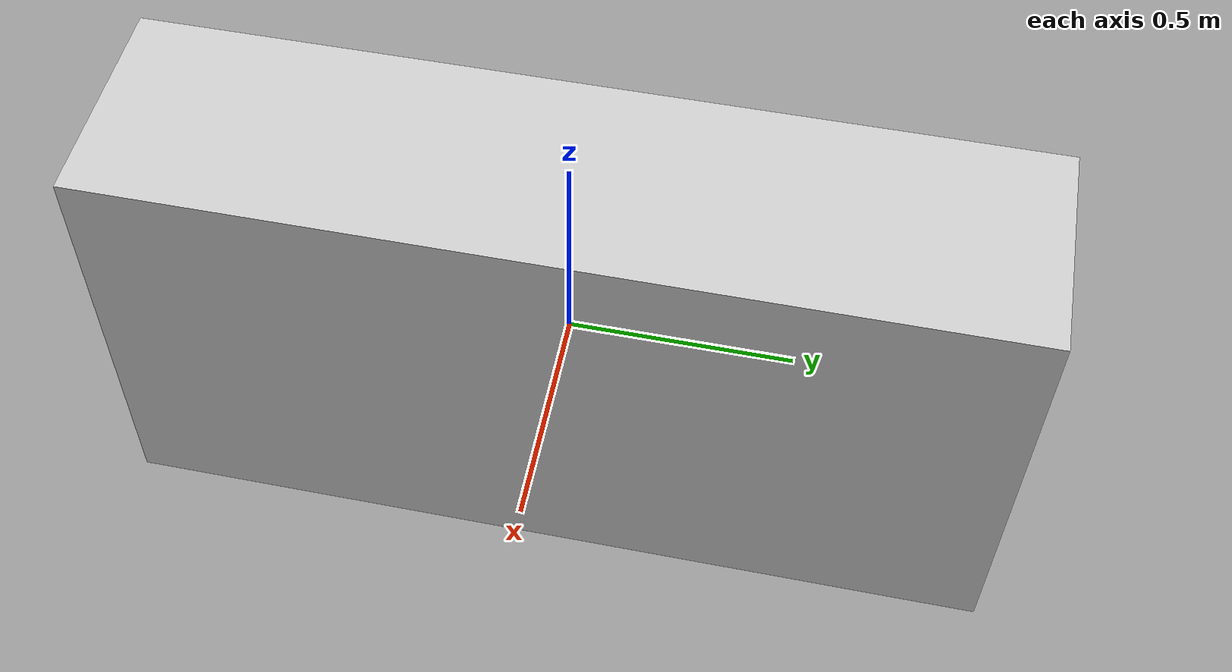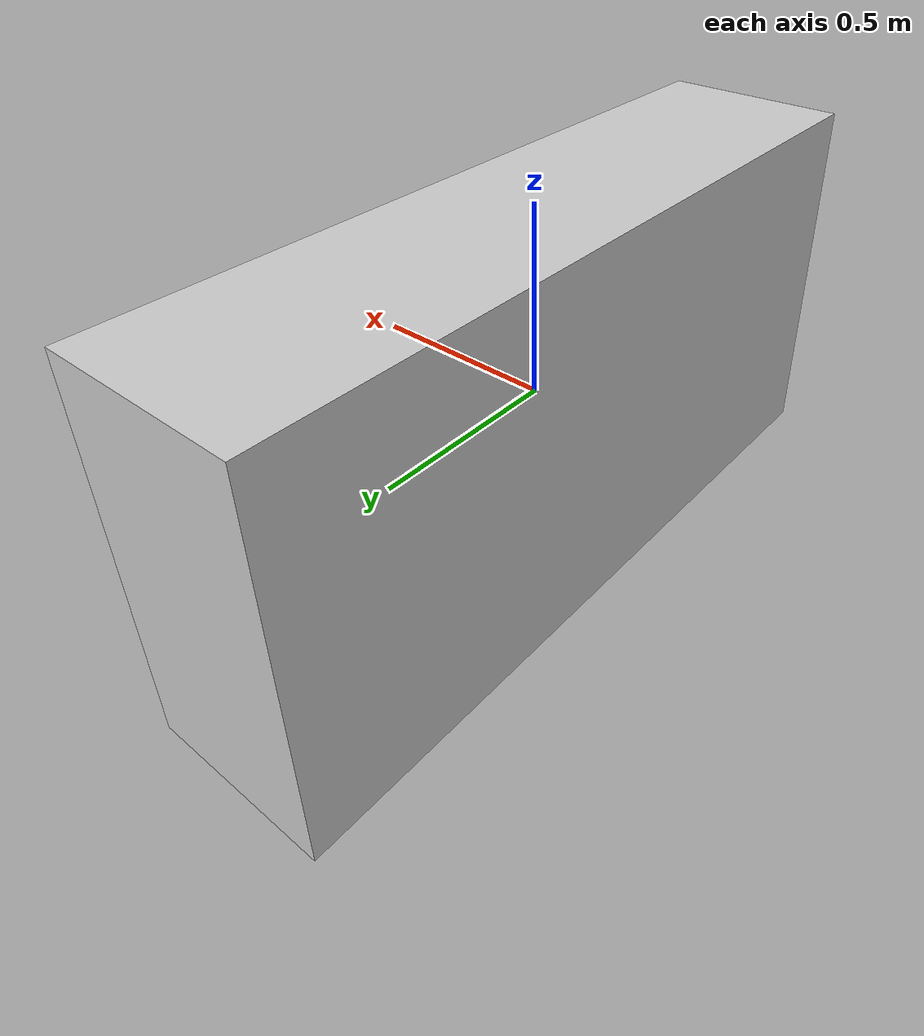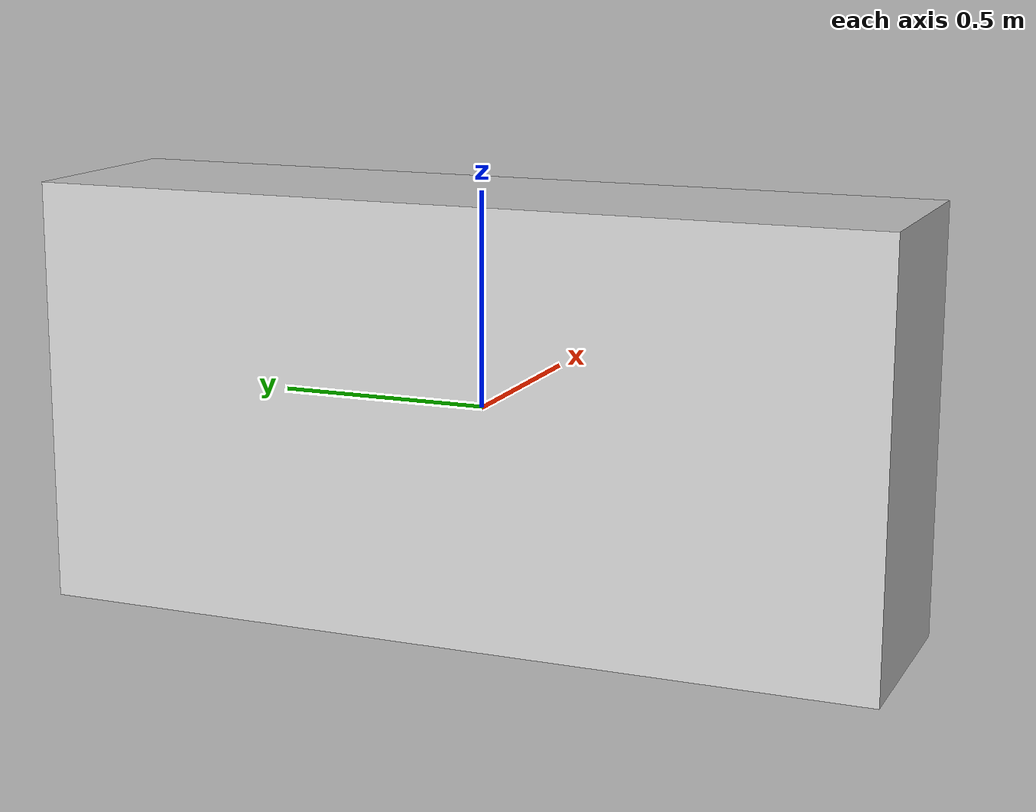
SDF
<?xml version="1.0"?>
<sdf version="1.6">
  <model name="wall">
    <static>true</static>
    <link name="wall_link">
      <collision name="collision">
        <geometry>
          <box>
            <size>0.5 2 1</size>
          </box>
        </geometry>
      </collision>
      <visual name="visual">
        <geometry>
          <box>
            <size>0.5 2 1</size>
          </box>
        </geometry>
        <material>
          <ambient>0.8 0.8 0.8 1</ambient>
          <diffuse>0.8 0.8 0.8 1</diffuse>
          <specular>0.8 0.8 0.8 1</specular>
        </material>
      </visual>
    </link>
  </model>
</sdf>
